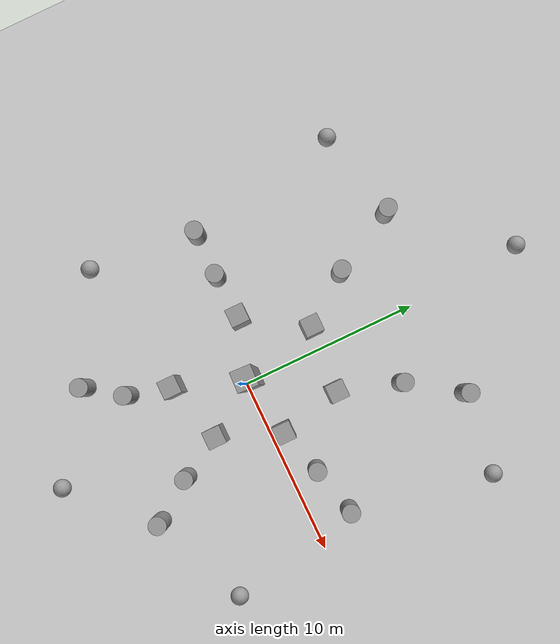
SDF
<sdf version="1.7">
 <world name="default">
  <model name="ground_plane">
   <static>1</static>
   <link name="link">
    <collision name="collision">
     <geometry><plane><normal>0 0 1</normal><size>100 100</size></plane></geometry>
     <surface>
      <contact><collide_bitmask>65535</collide_bitmask></contact>
      <friction><ode><mu>100</mu><mu2>50</mu2></ode></friction>
     </surface>
    </collision>
    <visual name="visual">
     <cast_shadows>0</cast_shadows>
     <geometry><plane><normal>0 0 1</normal><size>100 100</size></plane></geometry>
     <material>
      <script><uri>file://media/materials/scripts/gazebo.material</uri><name>Gazebo/Grey</name></script>
     </material>
    </visual>
   </link>
  </model>
  <light name="sun" type="directional">
   <pose>0 0 10 0 -0 0</pose>
   <diffuse>0.8 0.8 0.8 1</diffuse>
   <specular>0.2 0.2 0.2 1</specular>
   <attenuation>
    <range>1000</range>
    <constant>0.9</constant>
    <linear>0.01</linear>
    <quadratic>0.001</quadratic>
   </attenuation>
   <direction>-0.5 0.1 -0.9</direction>
   <spot><inner_angle>0</inner_angle><outer_angle>0</outer_angle><falloff>0</falloff></spot>
  </light>
  <model name="unit_box">
   <pose>-3.41525 1.18542 1.4232 1e-06 1e-06 -0.000103</pose>
   <link name="link">
    <inertial>
     <mass>1</mass>
     <inertia>
      <ixx>0.166667</ixx>
      <ixy>0</ixy>
      <ixz>0</ixz>
      <iyy>0.166667</iyy>
      <iyz>0</iyz>
      <izz>0.166667</izz>
     </inertia>
    </inertial>
    <collision name="collision"><geometry><box><size>1 1 2.8464</size></box></geometry></collision>
    <visual name="visual">
     <geometry><box><size>1 1 2.8464</size></box></geometry>
     <material>
      <script><name>Gazebo/Grey</name><uri>file://media/materials/scripts/gazebo.material</uri></script>
     </material>
    </visual>
   </link>
  </model>
  <gravity>0 0 -9.8</gravity>
  <magnetic_field>6e-06 2.3e-05 -4.2e-05</magnetic_field>
  <atmosphere type="adiabatic"/>
  <physics type="ode">
   <max_step_size>0.001</max_step_size>
   <real_time_factor>1</real_time_factor>
   <real_time_update_rate>1000</real_time_update_rate>
  </physics>
  <scene><ambient>0.4 0.4 0.4 1</ambient><background>0.7 0.7 0.7 1</background><shadows>1</shadows></scene>
  <spherical_coordinates>
   <surface_model>EARTH_WGS84</surface_model>
   <latitude_deg>0</latitude_deg>
   <longitude_deg>0</longitude_deg>
   <elevation>0</elevation>
   <heading_deg>0</heading_deg>
  </spherical_coordinates>
  <model name="unit_box_clone_0">
   <pose>-1.53872 -3.63485 1.4232 3e-06 -0 0.000105</pose>
   <link name="link">
    <inertial>
     <mass>1</mass>
     <inertia>
      <ixx>0.166667</ixx>
      <ixy>0</ixy>
      <ixz>0</ixz>
      <iyy>0.166667</iyy>
      <iyz>0</iyz>
      <izz>0.166667</izz>
     </inertia>
    </inertial>
    <collision name="collision"><geometry><box><size>1 1 2.8464</size></box></geometry></collision>
    <visual name="visual">
     <geometry><box><size>1 1 2.8464</size></box></geometry>
     <material>
      <script><name>Gazebo/Grey</name><uri>file://media/materials/scripts/gazebo.material</uri></script>
     </material>
    </visual>
   </link>
  </model>
  <model name="unit_box_clone_1">
   <pose>-1.2548 4.48676 1.4232 -1e-06 -1e-06 -0.000211</pose>
   <link name="link">
    <inertial>
     <mass>1</mass>
     <inertia>
      <ixx>0.166667</ixx>
      <ixy>0</ixy>
      <ixz>0</ixz>
      <iyy>0.166667</iyy>
      <iyz>0</iyz>
      <izz>0.166667</izz>
     </inertia>
    </inertial>
    <collision name="collision"><geometry><box><size>1 1 2.8464</size></box></geometry></collision>
    <visual name="visual">
     <geometry><box><size>1 1 2.8464</size></box></geometry>
     <material>
      <script><name>Gazebo/Grey</name><uri>file://media/materials/scripts/gazebo.material</uri></script>
     </material>
    </visual>
   </link>
  </model>
  <model name="unit_box_clone_2">
   <pose>2.43009 4.19181 1.4232 -0 2e-06 -0.000165</pose>
   <link name="link">
    <inertial>
     <mass>1</mass>
     <inertia>
      <ixx>0.166667</ixx>
      <ixy>0</ixy>
      <ixz>0</ixz>
      <iyy>0.166667</iyy>
      <iyz>0</iyz>
      <izz>0.166667</izz>
     </inertia>
    </inertial>
    <collision name="collision"><geometry><box><size>1 1 2.8464</size></box></geometry></collision>
    <visual name="visual">
     <geometry><box><size>1 1 2.8464</size></box></geometry>
     <material>
      <script><name>Gazebo/Grey</name><uri>file://media/materials/scripts/gazebo.material</uri></script>
     </material>
    </visual>
   </link>
  </model>
  <model name="unit_box_clone_3">
   <pose>3.19671 0.742022 1.4232 0 -2e-06 -6.9e-05</pose>
   <link name="link">
    <inertial>
     <mass>1</mass>
     <inertia>
      <ixx>0.166667</ixx>
      <ixy>0</ixy>
      <ixz>0</ixz>
      <iyy>0.166667</iyy>
      <iyz>0</iyz>
      <izz>0.166667</izz>
     </inertia>
    </inertial>
    <collision name="collision"><geometry><box><size>1 1 2.8464</size></box></geometry></collision>
    <visual name="visual">
     <geometry><box><size>1 1 2.8464</size></box></geometry>
     <material>
      <script><name>Gazebo/Grey</name><uri>file://media/materials/scripts/gazebo.material</uri></script>
     </material>
    </visual>
   </link>
  </model>
  <model name="unit_box_clone_4">
   <pose>1.83856 -2.64667 1.4232 0 -2e-06 -0.000119</pose>
   <link name="link">
    <inertial>
     <mass>1</mass>
     <inertia>
      <ixx>0.166667</ixx>
      <ixy>0</ixy>
      <ixz>0</ixz>
      <iyy>0.166667</iyy>
      <iyz>0</iyz>
      <izz>0.166667</izz>
     </inertia>
    </inertial>
    <collision name="collision"><geometry><box><size>1 1 2.8464</size></box></geometry></collision>
    <visual name="visual">
     <geometry><box><size>1 1 2.8464</size></box></geometry>
     <material>
      <script><name>Gazebo/Grey</name><uri>file://media/materials/scripts/gazebo.material</uri></script>
     </material>
    </visual>
   </link>
  </model>
  <model name="unit_cylinder">
   <pose>-2.21577 -6.07575 1.19296 0 0 -2.4e-05</pose>
   <link name="link">
    <inertial>
     <mass>1</mass>
     <inertia><ixx>0.145833</ixx><ixy>0</ixy><ixz>0</ixz><iyy>0.145833</iyy><iyz>0</iyz><izz>0.125</izz></inertia>
    </inertial>
    <collision name="collision">
     <geometry><cylinder><radius>0.5</radius><length>2.38594</length></cylinder></geometry>
    </collision>
    <visual name="visual">
     <geometry><cylinder><radius>0.5</radius><length>2.38594</length></cylinder></geometry>
     <material>
      <script><name>Gazebo/Grey</name><uri>file://media/materials/scripts/gazebo.material</uri></script>
     </material>
    </visual>
   </link>
  </model>
  <model name="unit_cylinder_clone">
   <pose>-5.98206 1.03924 1.1054 0 -0 1e-06</pose>
   <link name="link">
    <inertial>
     <mass>1</mass>
     <inertia><ixx>0.145833</ixx><ixy>0</ixy><ixz>0</ixz><iyy>0.145833</iyy><iyz>0</iyz><izz>0.125</izz></inertia>
    </inertial>
    <collision name="collision">
     <geometry><cylinder><radius>0.5</radius><length>2.21082</length></cylinder></geometry>
    </collision>
    <visual name="visual">
     <geometry><cylinder><radius>0.5</radius><length>2.21082</length></cylinder></geometry>
     <material>
      <script><name>Gazebo/Grey</name><uri>file://media/materials/scripts/gazebo.material</uri></script>
     </material>
    </visual>
   </link>
  </model>
  <model name="unit_cylinder_clone_0">
   <pose>-3.28083 7.2398 1.10541 0 -0 0</pose>
   <link name="link">
    <inertial>
     <mass>1</mass>
     <inertia><ixx>0.145833</ixx><ixy>0</ixy><ixz>0</ixz><iyy>0.145833</iyy><iyz>0</iyz><izz>0.125</izz></inertia>
    </inertial>
    <collision name="collision">
     <geometry><cylinder><radius>0.5</radius><length>2.21082</length></cylinder></geometry>
    </collision>
    <visual name="visual">
     <geometry><cylinder><radius>0.5</radius><length>2.21082</length></cylinder></geometry>
     <material>
      <script><name>Gazebo/Grey</name><uri>file://media/materials/scripts/gazebo.material</uri></script>
     </material>
    </visual>
   </link>
  </model>
  <model name="unit_cylinder_clone_1">
   <pose>3.56111 7.65848 1.10541 0 -0 1e-06</pose>
   <link name="link">
    <inertial>
     <mass>1</mass>
     <inertia><ixx>0.145833</ixx><ixy>0</ixy><ixz>0</ixz><iyy>0.145833</iyy><iyz>0</iyz><izz>0.125</izz></inertia>
    </inertial>
    <collision name="collision">
     <geometry><cylinder><radius>0.5</radius><length>2.21082</length></cylinder></geometry>
    </collision>
    <visual name="visual">
     <geometry><cylinder><radius>0.5</radius><length>2.21082</length></cylinder></geometry>
     <material>
      <script><name>Gazebo/Grey</name><uri>file://media/materials/scripts/gazebo.material</uri></script>
     </material>
    </visual>
   </link>
  </model>
  <model name="unit_cylinder_clone_2">
   <pose>3.17995 -5.10615 1.1054 0 -0 1e-06</pose>
   <link name="link">
    <inertial>
     <mass>1</mass>
     <inertia><ixx>0.145833</ixx><ixy>0</ixy><ixz>0</ixz><iyy>0.145833</iyy><iyz>0</iyz><izz>0.125</izz></inertia>
    </inertial>
    <collision name="collision">
     <geometry><cylinder><radius>0.5</radius><length>2.21082</length></cylinder></geometry>
    </collision>
    <visual name="visual">
     <geometry><cylinder><radius>0.5</radius><length>2.21082</length></cylinder></geometry>
     <material>
      <script><name>Gazebo/Grey</name><uri>file://media/materials/scripts/gazebo.material</uri></script>
     </material>
    </visual>
   </link>
  </model>
  <model name="unit_cylinder_clone_3">
   <pose>5.8325 1.4565 1.10541 0 -0 1e-06</pose>
   <link name="link">
    <inertial>
     <mass>1</mass>
     <inertia><ixx>0.145833</ixx><ixy>0</ixy><ixz>0</ixz><iyy>0.145833</iyy><iyz>0</iyz><izz>0.125</izz></inertia>
    </inertial>
    <collision name="collision">
     <geometry><cylinder><radius>0.5</radius><length>2.21082</length></cylinder></geometry>
    </collision>
    <visual name="visual">
     <geometry><cylinder><radius>0.5</radius><length>2.21082</length></cylinder></geometry>
     <material>
      <script><name>Gazebo/Grey</name><uri>file://media/materials/scripts/gazebo.material</uri></script>
     </material>
    </visual>
   </link>
  </model>
  <model name="unit_cylinder_clone_4">
   <pose>-3.61313 -8.02934 1.10541 0 -0 0</pose>
   <link name="link">
    <inertial>
     <mass>1</mass>
     <inertia><ixx>0.145833</ixx><ixy>0</ixy><ixz>0</ixz><iyy>0.145833</iyy><iyz>0</iyz><izz>0.125</izz></inertia>
    </inertial>
    <collision name="collision">
     <geometry><cylinder><radius>0.5</radius><length>2.21082</length></cylinder></geometry>
    </collision>
    <visual name="visual">
     <geometry><cylinder><radius>0.5</radius><length>2.21082</length></cylinder></geometry>
     <material>
      <script><name>Gazebo/Grey</name><uri>file://media/materials/scripts/gazebo.material</uri></script>
     </material>
    </visual>
   </link>
  </model>
  <model name="unit_cylinder_clone_5">
   <pose>-8.52772 1.04763 1.10541 0 -0 0</pose>
   <link name="link">
    <inertial>
     <mass>1</mass>
     <inertia><ixx>0.145833</ixx><ixy>0</ixy><ixz>0</ixz><iyy>0.145833</iyy><iyz>0</iyz><izz>0.125</izz></inertia>
    </inertial>
    <collision name="collision">
     <geometry><cylinder><radius>0.5</radius><length>2.21082</length></cylinder></geometry>
    </collision>
    <visual name="visual">
     <geometry><cylinder><radius>0.5</radius><length>2.21082</length></cylinder></geometry>
     <material>
      <script><name>Gazebo/Grey</name><uri>file://media/materials/scripts/gazebo.material</uri></script>
     </material>
    </visual>
   </link>
  </model>
  <model name="unit_cylinder_clone_6">
   <pose>-5.17824 10.8631 1.1054 0 -0 1e-06</pose>
   <link name="link">
    <inertial>
     <mass>1</mass>
     <inertia><ixx>0.145833</ixx><ixy>0</ixy><ixz>0</ixz><iyy>0.145833</iyy><iyz>0</iyz><izz>0.125</izz></inertia>
    </inertial>
    <collision name="collision">
     <geometry><cylinder><radius>0.5</radius><length>2.21082</length></cylinder></geometry>
    </collision>
    <visual name="visual">
     <geometry><cylinder><radius>0.5</radius><length>2.21082</length></cylinder></geometry>
     <material>
      <script><name>Gazebo/Grey</name><uri>file://media/materials/scripts/gazebo.material</uri></script>
     </material>
    </visual>
   </link>
  </model>
  <model name="unit_cylinder_clone_7">
   <pose>5.55925 10.5475 1.1054 0 -0 1e-06</pose>
   <link name="link">
    <inertial>
     <mass>1</mass>
     <inertia><ixx>0.145833</ixx><ixy>0</ixy><ixz>0</ixz><iyy>0.145833</iyy><iyz>0</iyz><izz>0.125</izz></inertia>
    </inertial>
    <collision name="collision">
     <geometry><cylinder><radius>0.5</radius><length>2.21082</length></cylinder></geometry>
    </collision>
    <visual name="visual">
     <geometry><cylinder><radius>0.5</radius><length>2.21082</length></cylinder></geometry>
     <material>
      <script><name>Gazebo/Grey</name><uri>file://media/materials/scripts/gazebo.material</uri></script>
     </material>
    </visual>
   </link>
  </model>
  <model name="unit_cylinder_clone_8">
   <pose>8.57322 2.11493 1.10541 0 -0 0</pose>
   <link name="link">
    <inertial>
     <mass>1</mass>
     <inertia><ixx>0.145833</ixx><ixy>0</ixy><ixz>0</ixz><iyy>0.145833</iyy><iyz>0</iyz><izz>0.125</izz></inertia>
    </inertial>
    <collision name="collision">
     <geometry><cylinder><radius>0.5</radius><length>2.21082</length></cylinder></geometry>
    </collision>
    <visual name="visual">
     <geometry><cylinder><radius>0.5</radius><length>2.21082</length></cylinder></geometry>
     <material>
      <script><name>Gazebo/Grey</name><uri>file://media/materials/scripts/gazebo.material</uri></script>
     </material>
    </visual>
   </link>
  </model>
  <model name="unit_cylinder_clone_9">
   <pose>4.7583 -7.40097 1.1054 0 -0 0</pose>
   <link name="link">
    <inertial>
     <mass>1</mass>
     <inertia><ixx>0.145833</ixx><ixy>0</ixy><ixz>0</ixz><iyy>0.145833</iyy><iyz>0</iyz><izz>0.125</izz></inertia>
    </inertial>
    <collision name="collision">
     <geometry><cylinder><radius>0.5</radius><length>2.21082</length></cylinder></geometry>
    </collision>
    <visual name="visual">
     <geometry><cylinder><radius>0.5</radius><length>2.21082</length></cylinder></geometry>
     <material>
      <script><name>Gazebo/Grey</name><uri>file://media/materials/scripts/gazebo.material</uri></script>
     </material>
    </visual>
   </link>
  </model>
  <model name="unit_sphere_0">
   <pose>10.2351 -5.29035 0.5 0 -0 0</pose>
   <link name="link">
    <inertial>
     <mass>1</mass>
     <inertia><ixx>0.1</ixx><ixy>0</ixy><ixz>0</ixz><iyy>0.1</iyy><iyz>0</iyz><izz>0.1</izz></inertia>
    </inertial>
    <collision name="collision"><geometry><sphere><radius>0.5</radius></sphere></geometry></collision>
    <visual name="visual">
     <geometry><sphere><radius>0.5</radius></sphere></geometry>
     <material>
      <script><name>Gazebo/Grey</name><uri>file://media/materials/scripts/gazebo.material</uri></script>
     </material>
    </visual>
   </link>
  </model>
  <model name="unit_sphere_0_clone">
   <pose>0.793495 -11.5031 0.5 0 -0 0</pose>
   <link name="link">
    <inertial>
     <mass>1</mass>
     <inertia><ixx>0.1</ixx><ixy>0</ixy><ixz>0</ixz><iyy>0.1</iyy><iyz>0</iyz><izz>0.1</izz></inertia>
    </inertial>
    <collision name="collision"><geometry><sphere><radius>0.5</radius></sphere></geometry></collision>
    <visual name="visual">
     <geometry><sphere><radius>0.5</radius></sphere></geometry>
     <material>
      <script><name>Gazebo/Grey</name><uri>file://media/materials/scripts/gazebo.material</uri></script>
     </material>
    </visual>
   </link>
  </model>
  <model name="unit_sphere_0_clone_0">
   <pose>-9.35798 -5.04074 0.5 0 -0 0</pose>
   <link name="link">
    <inertial>
     <mass>1</mass>
     <inertia><ixx>0.1</ixx><ixy>0</ixy><ixz>0</ixz><iyy>0.1</iyy><iyz>0</iyz><izz>0.1</izz></inertia>
    </inertial>
    <collision name="collision"><geometry><sphere><radius>0.5</radius></sphere></geometry></collision>
    <visual name="visual">
     <geometry><sphere><radius>0.5</radius></sphere></geometry>
     <material>
      <script><name>Gazebo/Grey</name><uri>file://media/materials/scripts/gazebo.material</uri></script>
     </material>
    </visual>
   </link>
  </model>
  <model name="unit_sphere_0_clone_1">
   <pose>-10.3106 9.78944 0.5 0 -0 0</pose>
   <link name="link">
    <inertial>
     <mass>1</mass>
     <inertia><ixx>0.1</ixx><ixy>0</ixy><ixz>0</ixz><iyy>0.1</iyy><iyz>0</iyz><izz>0.1</izz></inertia>
    </inertial>
    <collision name="collision"><geometry><sphere><radius>0.5</radius></sphere></geometry></collision>
    <visual name="visual">
     <geometry><sphere><radius>0.5</radius></sphere></geometry>
     <material>
      <script><name>Gazebo/Grey</name><uri>file://media/materials/scripts/gazebo.material</uri></script>
     </material>
    </visual>
   </link>
  </model>
  <model name="unit_sphere_0_clone_2">
   <pose>-0.51406 16.5791 0.5 0 -0 0</pose>
   <link name="link">
    <inertial>
     <mass>1</mass>
     <inertia><ixx>0.1</ixx><ixy>0</ixy><ixz>0</ixz><iyy>0.1</iyy><iyz>0</iyz><izz>0.1</izz></inertia>
    </inertial>
    <collision name="collision"><geometry><sphere><radius>0.5</radius></sphere></geometry></collision>
    <visual name="visual">
     <geometry><sphere><radius>0.5</radius></sphere></geometry>
     <material>
      <script><name>Gazebo/Grey</name><uri>file://media/materials/scripts/gazebo.material</uri></script>
     </material>
    </visual>
   </link>
  </model>
  <model name="unit_sphere_0_clone_3">
   <pose>10.1949 10.0306 0.5 0 -0 0</pose>
   <link name="link">
    <inertial>
     <mass>1</mass>
     <inertia><ixx>0.1</ixx><ixy>0</ixy><ixz>0</ixz><iyy>0.1</iyy><iyz>0</iyz><izz>0.1</izz></inertia>
    </inertial>
    <collision name="collision"><geometry><sphere><radius>0.5</radius></sphere></geometry></collision>
    <visual name="visual">
     <geometry><sphere><radius>0.5</radius></sphere></geometry>
     <material>
      <script><name>Gazebo/Grey</name><uri>file://media/materials/scripts/gazebo.material</uri></script>
     </material>
    </visual>
   </link>
  </model>
  <model name="unit_box_clone">
   <pose>-0.060711 0.406611 5.30693 -5.5e-05 0.000107 -0.046424</pose>
   <link name="link">
    <inertial>
     <mass>1</mass>
     <inertia>
      <ixx>0.166667</ixx>
      <ixy>0</ixy>
      <ixz>0</ixz>
      <iyy>0.166667</iyy>
      <iyz>0</iyz>
      <izz>0.166667</izz>
     </inertia>
    </inertial>
    <collision name="collision"><geometry><box><size>1 1 10.6137</size></box></geometry></collision>
    <visual name="visual">
     <geometry><box><size>1 1 10.6137</size></box></geometry>
     <material>
      <script><name>Gazebo/Grey</name><uri>file://media/materials/scripts/gazebo.material</uri></script>
     </material>
    </visual>
   </link>
  </model>
 </world>
</sdf>
